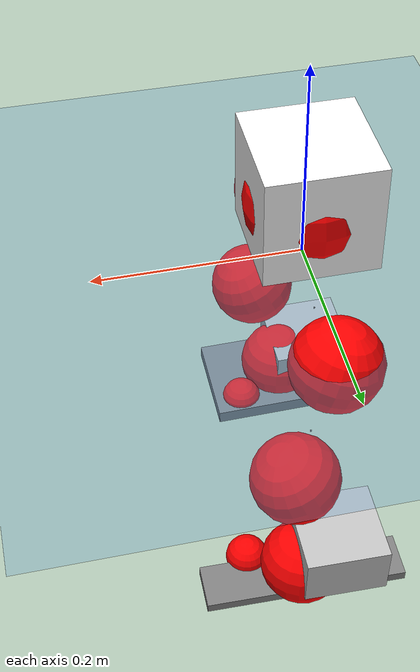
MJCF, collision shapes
<mujoco model="pi_12dof_release_v1">
  <compiler angle="radian" assetdir="assets" balanceinertia="true" inertiafromgeom="false"/>

  <option timestep="0.005" density="1.2" viscosity="2e-05"/>

  <size nkey="1"/>

  <visual>
    <quality shadowsize="8192"/>
    <map shadowclip="0.5"/>
  </visual>

  <default>
    <default class="/">
      <joint armature="0.01" damping="0.01" frictionloss="0.01"/>
      <geom contype="0" conaffinity="0" group="1" solref="-1000 -80"/>
      <site size="0.01 0.005 0.005" group="5"/>
      <general forcelimited="true" biastype="affine" gainprm="20" biasprm="0 -20 -0.5"/>
      <default class="foot">
        <geom size="0.0845 0.036 0.005" type="box" condim="6" group="4" priority="1" friction="0.9 0.2 0.2" solimp="0.015 1 0.005"/>
      </default>
      <default class="reward_collision_sphere">
        <geom group="5" rgba="1 0 0 1"/>
      </default>
    </default>
  </default>

  <asset>
    <texture type="skybox" colorspace="auto" name="//unnamed_texture_0" builtin="gradient" rgb1="0.95 0.95 0.95" rgb2="0.95 0.95 0.95" width="100" height="600"/>
    <texture type="2d" colorspace="auto" name="texplane" builtin="checker" rgb1="0.345 0.575 0.748" rgb2="0.345 0.575 0.748" markrgb="1 1 1" width="512" height="512"/>
    <material name="MatPlane" class="/" texture="texplane" texuniform="true" texrepeat="2 2" specular="0.9"/>
    <mesh name="baselink_1" class="/" file="baselink_1.STL"/>
    <mesh name="r_hip_pitch_link" class="/" file="r_hip_pitch_link.STL"/>
    <mesh name="r_hip_roll_link" class="/" file="r_hip_roll_link.STL"/>
    <mesh name="r_thigh_link" class="/" file="r_thigh_link.STL"/>
    <mesh name="r_calf_link" class="/" file="r_calf_link.STL"/>
    <mesh name="r_ankle_pitch_link" class="/" file="r_ankle_pitch_link.STL"/>
    <mesh name="r_ankle_roll_link" class="/" file="r_ankle_roll_link.STL"/>
    <mesh name="l_hip_pitch_link" class="/" file="l_hip_pitch_link.STL"/>
    <mesh name="l_hip_roll_link" class="/" file="l_hip_roll_link.STL"/>
    <mesh name="l_thigh_link" class="/" file="l_thigh_link.STL"/>
    <mesh name="l_calf_link" class="/" file="l_calf_link.STL"/>
    <mesh name="l_ankle_pitch_link" class="/" file="l_ankle_pitch_link.STL"/>
    <mesh name="l_ankle_roll_link" class="/" file="l_ankle_roll_link.STL"/>
  </asset>

  <worldbody>
    <geom name="floor" class="/" size="100 100 0.125" type="plane" group="0" material="MatPlane"/>
    <light name="toplight_shadow" class="/" pos="0 0 5" dir="0.0990148 0.0990148 -0.990148" type="directional" ambient="0.04 0.04 0.04" diffuse="0.55 0.55 0.55" specular="0.12 0.12 0.12"/>
    <light name="toplight_fill" class="/" pos="0 0 5" dir="0.0990148 0.0990148 -0.990148" type="directional" castshadow="false" ambient="0.04 0.04 0.04" diffuse="0.3 0.3 0.3" specular="0.08 0.08 0.08"/>
    <body name="trunk" pos="-0.00130285 0.00897785 0.000310284" quat="1 5.99599e-05 -0.000160179 2.15265e-05">
      <inertial pos="-0.00089596 0.00960151 0.0381454" quat="0.725407 0.0537821 0.0357188 0.685285" mass="2.89912" diaginertia="0.00352257 0.0822399 0.00318765"/>
      <joint name="//unnamed_joint_0" type="free"/>
      <geom name="//unnamed_geom_1" class="/" type="mesh" density="0" rgba="1 1 1 1" mesh="baselink_1"/>
      <geom name="//unnamed_geom_2" class="/" size="0.0548153 0.0548153 0.0548153" pos="0 0 0.0758282" type="box" rgba="1 1 1 1"/>
      <geom name="//unnamed_geom_3" class="reward_collision_sphere" size="0.0602968" pos="0 0 0.0663496"/>
      <site name="imu" class="/" pos="-0.0432148 -0.0313958 0.0448112" size="0.0109631"/>
      <camera name="track" class="/" pos="0 -3.07751 0" quat="0.707107 0.707107 0 0" mode="trackcom"/>
      <camera name="ego_camera" class="/" pos="0.0601735 0 0.170613" quat="-0.5 -0.5 0.5 0.5"/>
      <body name="r_hip_pitch_link" pos="-0.00769387 -0.0490075 -0.0422225" quat="0.992404 -0.0021798 -0.122946 -0.00380282">
        <inertial pos="0.00175477 -0.0877461 -0.00566585" quat="-0.0192946 0.705932 -0.0284037 0.707447" mass="0.532675" diaginertia="3.57191e-05 0.000926703 6.15786e-05"/>
        <joint name="r_hip_pitch_joint" class="/" pos="0 0 0" axis="0.0169768 -0.999801 -0.0105057" stiffness="0.00309049" range="-1.72089 1.3708" armature="0.0117242" damping="0.0247337" frictionloss="0.0121379"/>
        <geom name="//unnamed_geom_4" class="/" type="mesh" density="0" rgba="0.75294 0.75294 0.75294 1" mesh="r_hip_pitch_link"/>
        <geom name="//unnamed_geom_5" class="/" size="0.000548153 0.000548153 0.000548153" type="box" rgba="0.75294 0.75294 0.75294 1"/>
        <body name="r_hip_roll_link" pos="0.000428093 -0.100638 0.00623574" quat="0.999992 -0.000183048 0.00401653 -0.000163129">
          <inertial pos="-0.00943002 -0.00633021 -0.0618768" quat="0.735579 -0.0747134 -0.107448 0.664677" mass="0.511063" diaginertia="0.000112656 0.00244471 0.000103064"/>
          <joint name="r_hip_roll_joint" class="/" pos="0 0 0" axis="-0.999324 -0.0186303 -0.0316892" stiffness="0.0108247" range="-0.145077 0.303314" armature="0.0154027" damping="0.0867708" frictionloss="0.0105741"/>
          <geom name="//unnamed_geom_6" class="/" type="mesh" density="0" rgba="0.75294 0.75294 0.75294 1" mesh="r_hip_roll_link"/>
          <geom name="//unnamed_geom_7" class="/" size="0.000548153 0.000548153 0.000548153" type="box" rgba="0.75294 0.75294 0.75294 1"/>
          <geom name="//unnamed_geom_8" class="reward_collision_sphere" size="0.0438522"/>
          <body name="r_thigh_link" pos="0.0029067 0.0114815 -0.0593324" quat="0.999996 5.99104e-05 0.00283847 0.000568214">
            <inertial pos="-0.00724371 0.00200474 -0.0323339" quat="0.733783 0.679373 -0.00266777 0.00263502" mass="0.151476" diaginertia="4.68649e-05 0.000705905 5.19865e-05"/>
            <joint name="r_thigh_joint" class="/" pos="0 0 0" axis="0.0113519 -0.00768364 -0.999906" stiffness="0.0320451" range="-0.143036 0.589122" armature="0.0135109" damping="0.00644045" frictionloss="0.0117583"/>
            <geom name="//unnamed_geom_9" class="/" type="mesh" density="0" rgba="0.75294 0.75294 0.75294 1" mesh="r_thigh_link"/>
            <geom name="//unnamed_geom_10" class="/" size="0.000548153 0.000548153 0.000548153" type="box" rgba="0.75294 0.75294 0.75294 1"/>
            <body name="r_calf_link" pos="-0.00358328 0.00112214 -0.060766" quat="0.947704 0.000867336 0.319149 -0.000276069">
              <inertial pos="0.00347129 -0.00354899 -0.0680457" quat="0.999974 -0.00640265 -0.00152605 0.0030838" mass="1.21931" diaginertia="0.00122031 0.0355007 0.000118572"/>
              <joint name="r_calf_joint" class="/" pos="0 0 0" axis="0.017029 -0.999517 -0.0260012" stiffness="0.0266944" range="-1.91984 0.53313" armature="0.0122106" damping="0.013297" frictionloss="0.00797573"/>
              <geom name="//unnamed_geom_11" class="/" type="mesh" density="0" rgba="0.75294 0.75294 0.75294 1" mesh="r_calf_link"/>
              <geom name="//unnamed_geom_12" class="/" size="0.000548153 0.000548153 0.000548153" type="box" rgba="0.75294 0.75294 0.75294 1"/>
              <geom name="//unnamed_geom_13" class="reward_collision_sphere" size="0.0438522"/>
              <body name="r_ankle_pitch_link" pos="-0.0119103 -0.0129781 -0.139321" quat="0.979951 -0.00261865 -0.19922 0.000444271">
                <inertial pos="0.00913721 0.0183824 -0.000956018" quat="0.0288753 0.692714 0.00258015 0.720629" mass="0.182891" diaginertia="9.02919e-05 0.00168442 8.44957e-05"/>
                <joint name="r_ankle_pitch_joint" class="/" pos="0 0 0" axis="0.0478882 -0.998251 0.0346624" range="-1.40325 0.267965" armature="0.0113932" damping="0" frictionloss="0.0130493"/>
                <geom name="//unnamed_geom_14" class="/" type="mesh" density="0" rgba="0.75294 0.75294 0.75294 1" mesh="r_ankle_pitch_link"/>
                <geom name="//unnamed_geom_15" class="/" size="0.0427559 0.0438522 0.0274076" type="box" rgba="0.75294 0.75294 0.75294 1"/>
                <body name="r_ankle_roll_link" pos="0.0723726 0.00515936 0.00741028" quat="0.999987 -0.00453913 0.000617621 0.00235866">
                  <inertial pos="-0.022986 0.00229635 -0.0214939" quat="0.5484 0.458324 0.440292 0.543452" mass="0.682966" diaginertia="0.000365901 0.00896419 0.000207181"/>
                  <joint name="r_ankle_roll_joint" class="/" pos="0 0 0" axis="-0.999986 0.00074408 -0.00532399" range="0.100054 0.181877" armature="0.0117538" damping="0.012458" frictionloss="0.0140525"/>
                  <geom name="//unnamed_geom_16" class="/" type="mesh" density="0" rgba="0.75294 0.75294 0.75294 1" mesh="r_ankle_roll_link"/>
                  <geom name="//unnamed_geom_17" class="/" type="mesh" rgba="0.75294 0.75294 0.75294 1" mesh="r_ankle_roll_link"/>
                  <geom name="right_foot" class="foot" size="0.0838951 0.0540343 0.00743599" pos="-0.0409179 0 -0.0417055"/>
                  <geom name="//unnamed_geom_19" class="reward_collision_sphere" size="0.0438522" pos="-0.0401156 0 -0.018957"/>
                  <geom name="//unnamed_geom_20" class="reward_collision_sphere" size="0.0219261" pos="0.0120347 0.0307751 -0.0379141"/>
                  <geom name="//unnamed_geom_21" class="reward_collision_sphere" size="0.0219261" pos="-0.0962775 0.0307751 -0.0379141"/>
                  <site name="right_foot" class="foot" pos="-0.0409179 0 -0.0417055" size="0.0109631"/>
                </body>
              </body>
            </body>
          </body>
        </body>
      </body>
      <body name="l_hip_pitch_link" pos="0.000186892 0.0365542 -0.0326913" quat="0.992131 -0.00131236 -0.125196 -0.00101333">
        <inertial pos="0.00246403 0.0934073 -0.00627459" quat="-0.0291515 0.703062 0.0204115 0.710238" mass="0.467746" diaginertia="4.0807e-05 0.000857689 7.14765e-05"/>
        <joint name="l_hip_pitch_joint" class="/" pos="0 0 0" axis="0.00565831 0.999932 -0.0102273" range="-1.2232 1.73763" armature="0.010889" damping="0.0514463" frictionloss="0.00681063"/>
        <geom name="//unnamed_geom_22" class="/" type="mesh" density="0" rgba="0.75294 0.75294 0.75294 1" mesh="l_hip_pitch_link"/>
        <geom name="//unnamed_geom_23" class="/" size="0.000548153 0.000548153 0.000548153" type="box" rgba="0.75294 0.75294 0.75294 1"/>
        <body name="l_hip_roll_link" pos="0.00695015 0.08787 0.0119043" quat="1 -0.000469722 -0.00073614 0.000164376">
          <inertial pos="0.00180815 0.000133354 -0.0456873" quat="0.677408 -0.0659404 -0.0815362 0.728094" mass="0.4057" diaginertia="0.000108546 0.00215192 9.32178e-05"/>
          <joint name="l_hip_roll_joint" class="/" pos="0 0 0" axis="-0.998925 0.0332411 -0.032316" stiffness="0.010612" range="-0.264017 0.0841528" armature="0.00567642" damping="0.00394922" frictionloss="0.00883696"/>
          <geom name="//unnamed_geom_24" class="/" type="mesh" density="0" rgba="0.75294 0.75294 0.75294 1" mesh="l_hip_roll_link"/>
          <geom name="//unnamed_geom_25" class="/" size="0.000548153 0.000548153 0.000548153" type="box" rgba="0.75294 0.75294 0.75294 1"/>
          <geom name="//unnamed_geom_26" class="reward_collision_sphere" size="0.0438522"/>
          <body name="l_thigh_link" pos="0.00657397 0.0132778 -0.0711065" quat="0.999999 -0.000104341 -0.000110729 -0.00103026">
            <inertial pos="0.000255441 -0.00272865 -0.044776" quat="0.672347 0.740234 -0.000697717 -0.00171731" mass="0.12443" diaginertia="3.3084e-05 0.000739899 4.09144e-05"/>
            <joint name="l_thigh_joint" class="/" pos="0 0 0" axis="0.00437365 0.00159664 -0.999989" stiffness="0.00083763" range="-0.614038 0.309986" armature="0.0146673" damping="0" frictionloss="0.0105313"/>
            <geom name="//unnamed_geom_27" class="/" type="mesh" density="0" rgba="0.75294 0.75294 0.75294 1" mesh="l_thigh_link"/>
            <geom name="//unnamed_geom_28" class="/" size="0.000548153 0.000548153 0.000548153" type="box" rgba="0.75294 0.75294 0.75294 1"/>
            <body name="l_calf_link" pos="-0.00344462 0.00191349 -0.0640655" quat="0.948921 -0.00267382 0.315497 -0.00179544">
              <inertial pos="-0.00219098 -0.00417819 -0.0587277" quat="0.999919 -0.0040248 -0.00464607 0.0111127" mass="0.999732" diaginertia="0.000960707 0.0264455 0.000105323"/>
              <joint name="l_calf_joint" class="/" pos="0 0 0" axis="-0.0289083 0.999322 0.0228043" stiffness="0.0168382" range="-0.687704 1.73769" armature="0.00962392" damping="0" frictionloss="0.00900834"/>
              <geom name="//unnamed_geom_29" class="/" type="mesh" density="0" rgba="0.75294 0.75294 0.75294 1" mesh="l_calf_link"/>
              <geom name="//unnamed_geom_30" class="/" size="0.000548153 0.000548153 0.000548153" type="box" rgba="0.75294 0.75294 0.75294 1"/>
              <geom name="//unnamed_geom_31" class="reward_collision_sphere" size="0.0438522"/>
              <body name="l_ankle_pitch_link" pos="0.00213705 -0.00795773 -0.13739" quat="0.979519 0.000149491 -0.201294 -0.00477398">
                <inertial pos="0.00262284 0.00993945 -0.0066003" quat="-0.009199 0.703621 0.00221283 0.710513" mass="0.254199" diaginertia="0.000111325 0.00210425 9.90225e-05"/>
                <joint name="l_ankle_pitch_joint" class="/" pos="0 0 0" axis="0.00764032 0.999768 0.0201159" stiffness="0.0180334" range="-0.322601 1.16155" armature="0.0109779" damping="0" frictionloss="0.0108566"/>
                <geom name="//unnamed_geom_32" class="/" type="mesh" density="0" rgba="0.75294 0.75294 0.75294 1" mesh="l_ankle_pitch_link"/>
                <geom name="//unnamed_geom_33" class="/" size="0.0427559 0.0438522 0.0274076" type="box" rgba="0.75294 0.75294 0.75294 1"/>
                <body name="l_ankle_roll_link" pos="0.0743529 -0.00180465 -0.00684075" quat="0.999997 0.000343924 0.00225988 -0.00103989">
                  <inertial pos="-0.032729 -0.00118586 -0.0110248" quat="0.555053 0.416683 0.446135 0.565026" mass="0.68953" diaginertia="0.000329083 0.00937628 0.000216531"/>
                  <joint name="l_ankle_roll_joint" class="/" pos="0 0 0" axis="-0.997932 -0.0642764 -0.000931669" stiffness="0.0217774" range="-0.407697 0.325423" armature="0.0051007" damping="0" frictionloss="0.0165441"/>
                  <geom name="//unnamed_geom_34" class="/" type="mesh" density="0" rgba="0.75294 0.75294 0.75294 1" mesh="l_ankle_roll_link"/>
                  <geom name="//unnamed_geom_35" class="/" type="mesh" rgba="0.75294 0.75294 0.75294 1" mesh="l_ankle_roll_link"/>
                  <geom name="left_foot" class="foot" size="0.105071 0.0238717 0.00516042" pos="-0.0409179 0 -0.0417055"/>
                  <geom name="//unnamed_geom_37" class="reward_collision_sphere" size="0.0438522" pos="-0.0401156 0 -0.018957"/>
                  <geom name="//unnamed_geom_38" class="reward_collision_sphere" size="0.0219261" pos="0.0120347 -0.0307751 -0.0379141"/>
                  <geom name="//unnamed_geom_39" class="reward_collision_sphere" size="0.0219261" pos="-0.0962775 -0.0307751 -0.0379141"/>
                  <site name="left_foot" class="foot" pos="-0.0409179 0 -0.0417055" size="0.0109631"/>
                </body>
              </body>
            </body>
          </body>
        </body>
      </body>
    </body>
  </worldbody>

  <contact>
    <pair class="/" geom1="floor" geom2="right_foot" name="//unnamed_contact_1"/>
    <pair class="/" geom1="floor" geom2="left_foot" name="//unnamed_contact_0"/>
  </contact>

  <actuator>
    <general name="r_hip_pitch_joint" class="/" joint="r_hip_pitch_joint" forcerange="-25.1419 25.1419" gainprm="25.5431" biasprm="0 -25.5431 -0.599904"/>
    <general name="r_hip_roll_joint" class="/" joint="r_hip_roll_joint" forcerange="-23.7509 23.7509" gainprm="25.5431" biasprm="0 -25.5431 -0.599904"/>
    <general name="r_thigh_joint" class="/" joint="r_thigh_joint" forcerange="-16.4577 16.4577" gainprm="25.5431" biasprm="0 -25.5431 -0.599904"/>
    <general name="r_calf_joint" class="/" joint="r_calf_joint" forcerange="-32.206 32.206" gainprm="25.5431" biasprm="0 -25.5431 -0.599904"/>
    <general name="r_ankle_pitch_joint" class="/" joint="r_ankle_pitch_joint" forcerange="-12.9384 12.9384" gainprm="25.5431" biasprm="0 -25.5431 -0.599904"/>
    <general name="r_ankle_roll_joint" class="/" joint="r_ankle_roll_joint" forcerange="-12.8596 12.8596" gainprm="25.5431" biasprm="0 -25.5431 -0.599904"/>
    <general name="l_hip_pitch_joint" class="/" joint="l_hip_pitch_joint" forcerange="-11.4856 11.4856" gainprm="25.5431" biasprm="0 -25.5431 -0.599904"/>
    <general name="l_hip_roll_joint" class="/" joint="l_hip_roll_joint" forcerange="-29.607 29.607" gainprm="25.5431" biasprm="0 -25.5431 -0.599904"/>
    <general name="l_thigh_joint" class="/" joint="l_thigh_joint" forcerange="-25.5769 25.5769" gainprm="25.5431" biasprm="0 -25.5431 -0.599904"/>
    <general name="l_calf_joint" class="/" joint="l_calf_joint" forcerange="-12.9246 12.9246" gainprm="25.5431" biasprm="0 -25.5431 -0.599904"/>
    <general name="l_ankle_pitch_joint" class="/" joint="l_ankle_pitch_joint" forcerange="-12.8924 12.8924" gainprm="25.5431" biasprm="0 -25.5431 -0.599904"/>
    <general name="l_ankle_roll_joint" class="/" joint="l_ankle_roll_joint" forcerange="-16.6057 16.6057" gainprm="25.5431" biasprm="0 -25.5431 -0.599904"/>
  </actuator>

  <sensor>
    <gyro site="imu" name="imu_angular_velocity"/>
    <velocimeter site="imu" name="imu_linear_velocity"/>
    <framelinvel objtype="site" objname="left_foot" name="left_foot_global_linear_velocity"/>
    <framelinvel objtype="site" objname="right_foot" name="right_foot_global_linear_velocity"/>
  </sensor>

  <keyframe>
    <key name="home" qpos="0 0 0.291 1 0 0 0 0.4 0 0 -0.8 0.4 0 -0.4 0 0 0.8 -0.4 0"/>
  </keyframe>
</mujoco>
